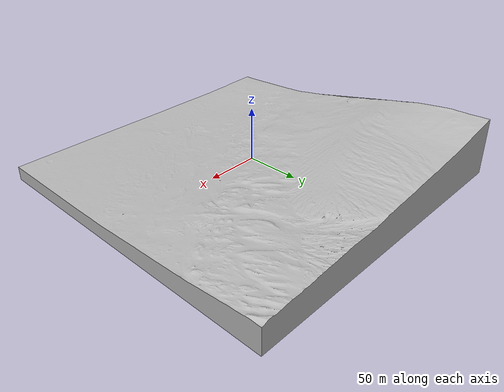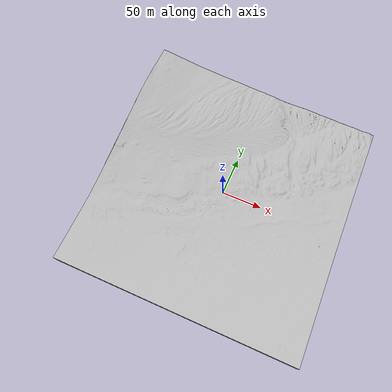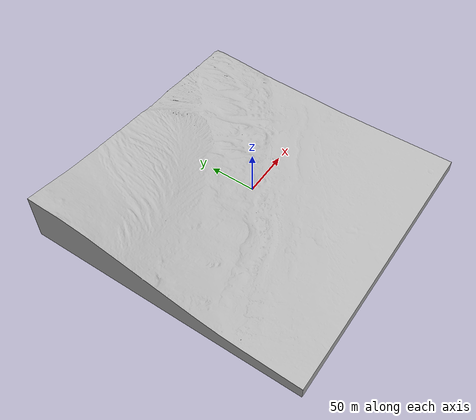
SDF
<sdf version="1.5">
  <world name="default">

    <!-- Martian Gravity-->
    <gravity>0 0 -3.711</gravity>

    <include>
      <uri>model://sun</uri>
    </include>

    <include>
      <uri>model://curiosity_path</uri>
      <name>curiosity_path</name>
      <pose>0 0 9 0 0 0</pose>
    </include>

  </world>
</sdf>

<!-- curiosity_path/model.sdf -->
<sdf version="1.5">
  <model name="curiosity_path">
      <static>true</static>
      <link name='link'>
       <collision name="collision">
        <geometry>
            <mesh>
              <uri>model://curiosity_path/meshes/curiosity_path25k.stl</uri>
              <scale>1 1 1</scale>
            </mesh>
        </geometry>
        <surface>
          <contact>
             <collide_bitmask>0xffff</collide_bitmask>
          </contact>
          <friction>
            <ode>
              <mu>100</mu>
              <mu2>50</mu2>
            </ode>
          </friction>
        </surface>
      </collision>
        <visual name='visual'>
          <geometry>
            <mesh>
              <uri>model://curiosity_path/meshes/curiosity_path25k.dae</uri>
              <scale>1 1 1</scale>
            </mesh>
          </geometry>
        </visual>
      </link>
  </model>
</sdf>
